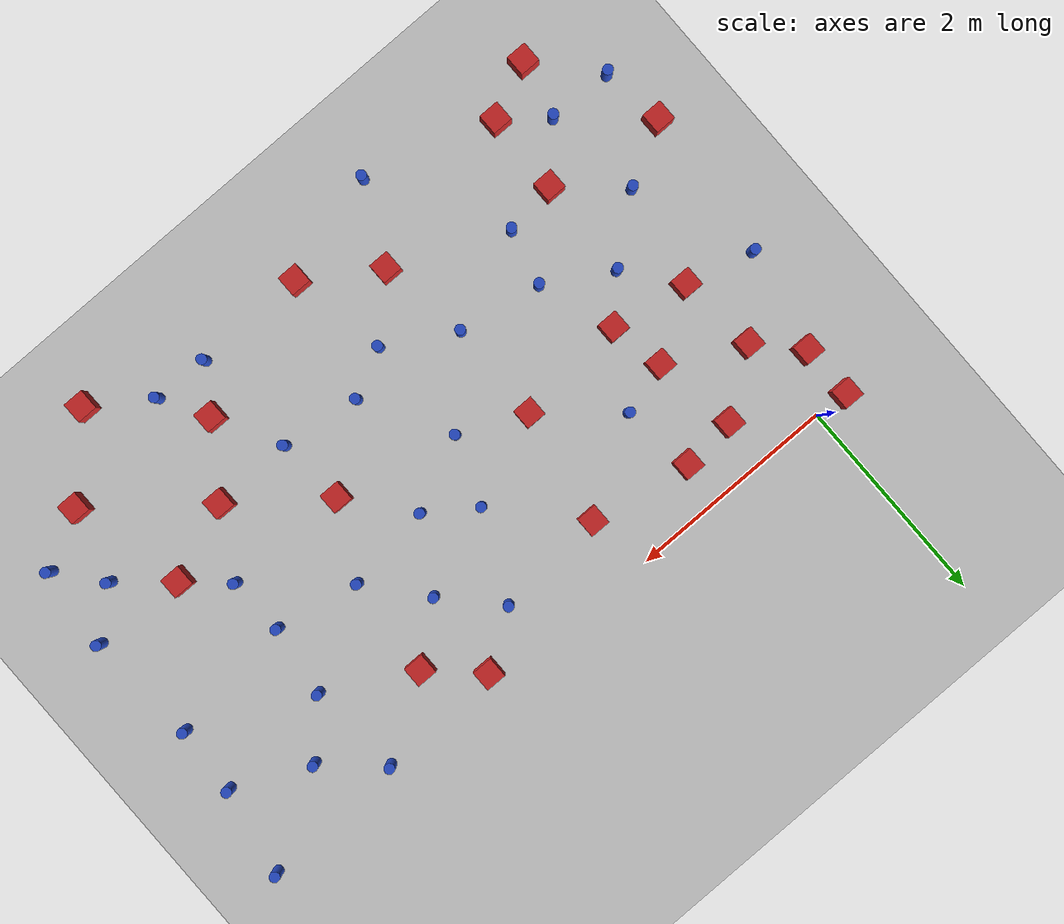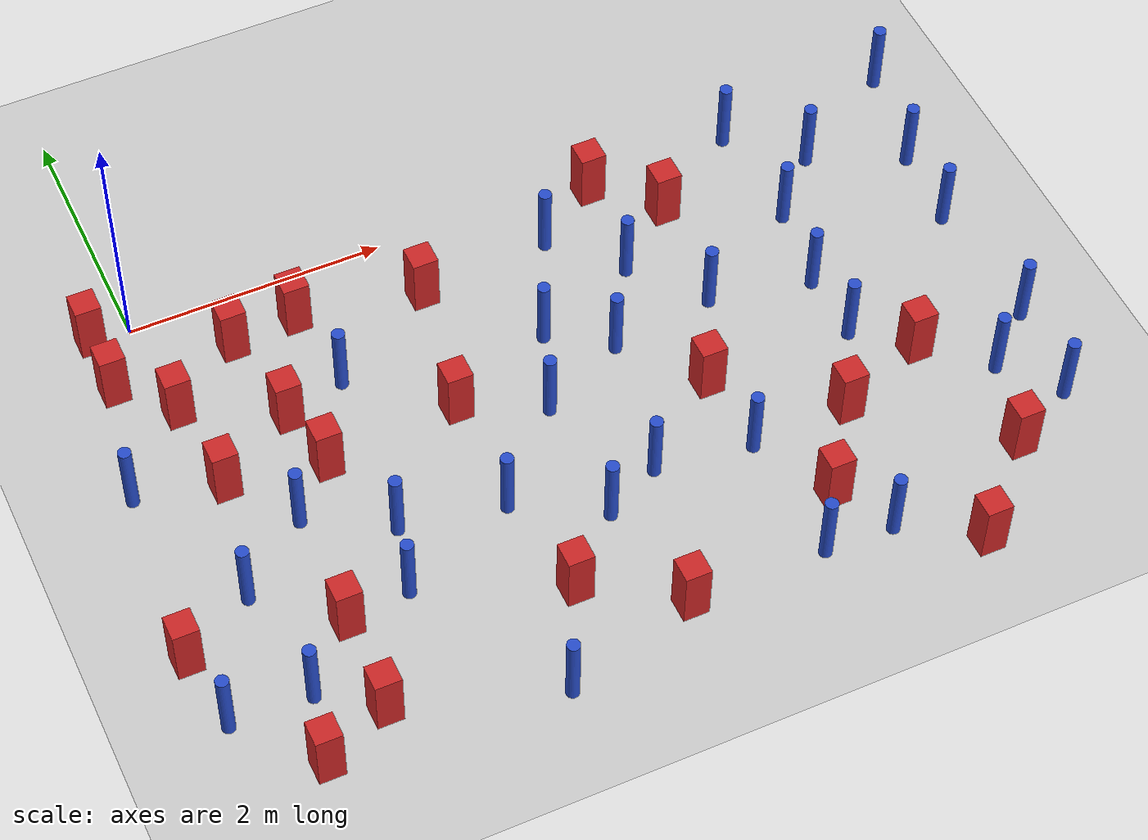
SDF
<sdf version="1.6">
 <world name="default">
  <model name="ground_plane">
   <static>1</static>
   <link name="link">
    <collision name="collision">
     <geometry><plane><normal>0 0 1</normal><size>100 100</size></plane></geometry>
     <surface><friction><ode><mu>100</mu><mu2>50</mu2></ode></friction></surface>
    </collision>
    <visual name="visual">
     <cast_shadows>0</cast_shadows>
     <geometry><plane><normal>0 0 1</normal><size>100 100</size></plane></geometry>
     <material>
      <ambient>1.0 1.0 1.0 1.0</ambient>
      <diffuse>0.8 0.8 0.8 1.0</diffuse>
      <specular>0.01 0.01 0.01 1.000000</specular>
     </material>
    </visual>
   </link>
  </model>
  <model name="NamedLocations">
   <static>true</static>
   <link name="DefaultStart"><pose>8.5 0 0 0 0 3.14</pose></link>
  </model>
  <model name="pole_obstacle7">
   <static>true</static>
   <pose>1.68926775952 -4.21490488597 2.88873142074e-08 -9.90536689852e-09 4.60219948989e-07 -1.2096599496e-07</pose>
   <link name="link">
    <pose>0 0 0.3 0 -0 0</pose>
    <inertial>
     <mass>1</mass>
     <inertia><ixx>0.145833</ixx><ixy>0</ixy><ixz>0</ixz><iyy>0.145833</iyy><iyz>0</iyz><izz>0.125</izz></inertia>
    </inertial>
    <collision name="collision">
     <geometry><cylinder><radius>0.05</radius><length>.6</length></cylinder></geometry>
    </collision>
    <visual name="visual">
     <geometry><cylinder><radius>0.05</radius><length>.6</length></cylinder></geometry>
     <material>
      <script><name>Gazebo/Blue</name><uri>file://media/materials/scripts/gazebo.material</uri></script>
     </material>
    </visual>
   </link>
  </model>
  <model name="square_post_obstacle15">
   <static>true</static>
   <pose>0.062376917893 -0.889046045588 8.22691968438e-08 7.2212513382e-06 -7.54495500217e-07 2.29674213826e-05</pose>
   <link name="link">
    <pose>0 0 0.25 0 -0 0</pose>
    <inertial>
     <mass>100</mass>
     <inertia>
      <ixx>0.166667</ixx>
      <ixy>0</ixy>
      <ixz>0</ixz>
      <iyy>0.166667</iyy>
      <iyz>0</iyz>
      <izz>0.166667</izz>
     </inertia>
    </inertial>
    <collision name="collision"><geometry><box><size>.2 .2 .5</size></box></geometry></collision>
    <visual name="visual">
     <geometry><box><size>.2 .2 .5</size></box></geometry>
     <material>
      <script><name>Gazebo/Red</name><uri>file://media/materials/scripts/gazebo.material</uri></script>
     </material>
    </visual>
   </link>
  </model>
  <model name="pole_obstacle12">
   <static>true</static>
   <pose>3.62660769973 -0.998927307068 2.88873142074e-08 -9.90536689217e-09 4.60219949004e-07 -1.20965994953e-07</pose>
   <link name="link">
    <pose>0 0 0.3 0 -0 0</pose>
    <inertial>
     <mass>1</mass>
     <inertia><ixx>0.145833</ixx><ixy>0</ixy><ixz>0</ixz><iyy>0.145833</iyy><iyz>0</iyz><izz>0.125</izz></inertia>
    </inertial>
    <collision name="collision">
     <geometry><cylinder><radius>0.05</radius><length>.6</length></cylinder></geometry>
    </collision>
    <visual name="visual">
     <geometry><cylinder><radius>0.05</radius><length>.6</length></cylinder></geometry>
     <material>
      <script><name>Gazebo/Blue</name><uri>file://media/materials/scripts/gazebo.material</uri></script>
     </material>
    </visual>
   </link>
  </model>
  <model name="pole_obstacle22">
   <static>true</static>
   <pose>4.3328598332 -3.92472839638 2.88873142074e-08 -9.90536690245e-09 4.6021994898e-07 -1.20965994966e-07</pose>
   <link name="link">
    <pose>0 0 0.3 0 -0 0</pose>
    <inertial>
     <mass>1</mass>
     <inertia><ixx>0.145833</ixx><ixy>0</ixy><ixz>0</ixz><iyy>0.145833</iyy><iyz>0</iyz><izz>0.125</izz></inertia>
    </inertial>
    <collision name="collision">
     <geometry><cylinder><radius>0.05</radius><length>.6</length></cylinder></geometry>
    </collision>
    <visual name="visual">
     <geometry><cylinder><radius>0.05</radius><length>.6</length></cylinder></geometry>
     <material>
      <script><name>Gazebo/Blue</name><uri>file://media/materials/scripts/gazebo.material</uri></script>
     </material>
    </visual>
   </link>
  </model>
  <model name="square_post_obstacle33">
   <static>true</static>
   <pose>4.07903659995 -3.48674998995 8.22691968438e-08 7.2212513382e-06 -7.54495500217e-07 2.29674213826e-05</pose>
   <link name="link">
    <pose>0 0 0.25 0 -0 0</pose>
    <inertial>
     <mass>100</mass>
     <inertia>
      <ixx>0.166667</ixx>
      <ixy>0</ixy>
      <ixz>0</ixz>
      <iyy>0.166667</iyy>
      <iyz>0</iyz>
      <izz>0.166667</izz>
     </inertia>
    </inertial>
    <collision name="collision"><geometry><box><size>.2 .2 .5</size></box></geometry></collision>
    <visual name="visual">
     <geometry><box><size>.2 .2 .5</size></box></geometry>
     <material>
      <script><name>Gazebo/Red</name><uri>file://media/materials/scripts/gazebo.material</uri></script>
     </material>
    </visual>
   </link>
  </model>
  <model name="pole_obstacle30">
   <static>true</static>
   <pose>4.87425039566 -2.23566295993 2.88873142074e-08 -9.90536690245e-09 4.6021994898e-07 -1.20965994966e-07</pose>
   <link name="link">
    <pose>0 0 0.3 0 -0 0</pose>
    <inertial>
     <mass>1</mass>
     <inertia><ixx>0.145833</ixx><ixy>0</ixy><ixz>0</ixz><iyy>0.145833</iyy><iyz>0</iyz><izz>0.125</izz></inertia>
    </inertial>
    <collision name="collision">
     <geometry><cylinder><radius>0.05</radius><length>.6</length></cylinder></geometry>
    </collision>
    <visual name="visual">
     <geometry><cylinder><radius>0.05</radius><length>.6</length></cylinder></geometry>
     <material>
      <script><name>Gazebo/Blue</name><uri>file://media/materials/scripts/gazebo.material</uri></script>
     </material>
    </visual>
   </link>
  </model>
  <model name="pole_obstacle34">
   <static>true</static>
   <pose>6.26835892626 -0.0522390040854 2.88873142074e-08 -9.90536689836e-09 4.60219948989e-07 -1.20965994962e-07</pose>
   <link name="link">
    <pose>0 0 0.3 0 -0 0</pose>
    <inertial>
     <mass>1</mass>
     <inertia><ixx>0.145833</ixx><ixy>0</ixy><ixz>0</ixz><iyy>0.145833</iyy><iyz>0</iyz><izz>0.125</izz></inertia>
    </inertial>
    <collision name="collision">
     <geometry><cylinder><radius>0.05</radius><length>.6</length></cylinder></geometry>
    </collision>
    <visual name="visual">
     <geometry><cylinder><radius>0.05</radius><length>.6</length></cylinder></geometry>
     <material>
      <script><name>Gazebo/Blue</name><uri>file://media/materials/scripts/gazebo.material</uri></script>
     </material>
    </visual>
   </link>
  </model>
  <model name="pole_obstacle38">
   <static>true</static>
   <pose>4.88893761564 -0.116368006837 2.88873142074e-08 -9.90536689681e-09 4.60219948993e-07 -1.20965994959e-07</pose>
   <link name="link">
    <pose>0 0 0.3 0 -0 0</pose>
    <inertial>
     <mass>1</mass>
     <inertia><ixx>0.145833</ixx><ixy>0</ixy><ixz>0</ixz><iyy>0.145833</iyy><iyz>0</iyz><izz>0.125</izz></inertia>
    </inertial>
    <collision name="collision">
     <geometry><cylinder><radius>0.05</radius><length>.6</length></cylinder></geometry>
    </collision>
    <visual name="visual">
     <geometry><cylinder><radius>0.05</radius><length>.6</length></cylinder></geometry>
     <material>
      <script><name>Gazebo/Blue</name><uri>file://media/materials/scripts/gazebo.material</uri></script>
     </material>
    </visual>
   </link>
  </model>
  <model name="pole_obstacle43">
   <static>true</static>
   <pose>4.95442581487 -1.01686541132 2.88873142074e-08 -9.90536689582e-09 4.60219948995e-07 -1.20965994957e-07</pose>
   <link name="link">
    <pose>0 0 0.3 0 -0 0</pose>
    <inertial>
     <mass>1</mass>
     <inertia><ixx>0.145833</ixx><ixy>0</ixy><ixz>0</ixz><iyy>0.145833</iyy><iyz>0</iyz><izz>0.125</izz></inertia>
    </inertial>
    <collision name="collision">
     <geometry><cylinder><radius>0.05</radius><length>.6</length></cylinder></geometry>
    </collision>
    <visual name="visual">
     <geometry><cylinder><radius>0.05</radius><length>.6</length></cylinder></geometry>
     <material>
      <script><name>Gazebo/Blue</name><uri>file://media/materials/scripts/gazebo.material</uri></script>
     </material>
    </visual>
   </link>
  </model>
  <model name="square_post_obstacle48">
   <static>true</static>
   <pose>3.6944671176 -0.170231550724 8.22691968438e-08 7.2212513382e-06 -7.54495500217e-07 2.29674213826e-05</pose>
   <link name="link">
    <pose>0 0 0.25 0 -0 0</pose>
    <inertial>
     <mass>100</mass>
     <inertia>
      <ixx>0.166667</ixx>
      <ixy>0</ixy>
      <ixz>0</ixz>
      <iyy>0.166667</iyy>
      <iyz>0</iyz>
      <izz>0.166667</izz>
     </inertia>
    </inertial>
    <collision name="collision"><geometry><box><size>.2 .2 .5</size></box></geometry></collision>
    <visual name="visual">
     <geometry><box><size>.2 .2 .5</size></box></geometry>
     <material>
      <script><name>Gazebo/Red</name><uri>file://media/materials/scripts/gazebo.material</uri></script>
     </material>
    </visual>
   </link>
  </model>
  <model name="square_post_obstacle49">
   <static>true</static>
   <pose>2.05412164594 -3.4729217565 8.22691968438e-08 7.2212513382e-06 -7.54495500217e-07 2.29674213826e-05</pose>
   <link name="link">
    <pose>0 0 0.25 0 -0 0</pose>
    <inertial>
     <mass>100</mass>
     <inertia>
      <ixx>0.166667</ixx>
      <ixy>0</ixy>
      <ixz>0</ixz>
      <iyy>0.166667</iyy>
      <iyz>0</iyz>
      <izz>0.166667</izz>
     </inertia>
    </inertial>
    <collision name="collision"><geometry><box><size>.2 .2 .5</size></box></geometry></collision>
    <visual name="visual">
     <geometry><box><size>.2 .2 .5</size></box></geometry>
     <material>
      <script><name>Gazebo/Red</name><uri>file://media/materials/scripts/gazebo.material</uri></script>
     </material>
    </visual>
   </link>
  </model>
  <model name="square_post_obstacle52">
   <static>true</static>
   <pose>0.138987767738 -1.64536180396 8.22691968438e-08 7.2212513382e-06 -7.54495500217e-07 2.29674213826e-05</pose>
   <link name="link">
    <pose>0 0 0.25 0 -0 0</pose>
    <inertial>
     <mass>100</mass>
     <inertia>
      <ixx>0.166667</ixx>
      <ixy>0</ixy>
      <ixz>0</ixz>
      <iyy>0.166667</iyy>
      <iyz>0</iyz>
      <izz>0.166667</izz>
     </inertia>
    </inertial>
    <collision name="collision"><geometry><box><size>.2 .2 .5</size></box></geometry></collision>
    <visual name="visual">
     <geometry><box><size>.2 .2 .5</size></box></geometry>
     <material>
      <script><name>Gazebo/Red</name><uri>file://media/materials/scripts/gazebo.material</uri></script>
     </material>
    </visual>
   </link>
  </model>
  <model name="pole_obstacle57">
   <static>true</static>
   <pose>3.23559337814 -1.63829231832 2.88873142074e-08 -9.90536689395e-09 4.60219949e-07 -1.20965994953e-07</pose>
   <link name="link">
    <pose>0 0 0.3 0 -0 0</pose>
    <inertial>
     <mass>1</mass>
     <inertia><ixx>0.145833</ixx><ixy>0</ixy><ixz>0</ixz><iyy>0.145833</iyy><iyz>0</iyz><izz>0.125</izz></inertia>
    </inertial>
    <collision name="collision">
     <geometry><cylinder><radius>0.05</radius><length>.6</length></cylinder></geometry>
    </collision>
    <visual name="visual">
     <geometry><cylinder><radius>0.05</radius><length>.6</length></cylinder></geometry>
     <material>
      <script><name>Gazebo/Blue</name><uri>file://media/materials/scripts/gazebo.material</uri></script>
     </material>
    </visual>
   </link>
  </model>
  <model name="pole_obstacle60">
   <static>true</static>
   <pose>6.05364668089 -3.38043724382 2.88873142074e-08 -9.90536690245e-09 4.6021994898e-07 -1.20965994966e-07</pose>
   <link name="link">
    <pose>0 0 0.3 0 -0 0</pose>
    <inertial>
     <mass>1</mass>
     <inertia><ixx>0.145833</ixx><ixy>0</ixy><ixz>0</ixz><iyy>0.145833</iyy><iyz>0</iyz><izz>0.125</izz></inertia>
    </inertial>
    <collision name="collision">
     <geometry><cylinder><radius>0.05</radius><length>.6</length></cylinder></geometry>
    </collision>
    <visual name="visual">
     <geometry><cylinder><radius>0.05</radius><length>.6</length></cylinder></geometry>
     <material>
      <script><name>Gazebo/Blue</name><uri>file://media/materials/scripts/gazebo.material</uri></script>
     </material>
    </visual>
   </link>
  </model>
  <model name="square_post_obstacle67">
   <static>true</static>
   <pose>-0.054068651377 -4.07074214937 8.22691968438e-08 7.2212513382e-06 -7.54495500217e-07 2.29674213826e-05</pose>
   <link name="link">
    <pose>0 0 0.25 0 -0 0</pose>
    <inertial>
     <mass>100</mass>
     <inertia>
      <ixx>0.166667</ixx>
      <ixy>0</ixy>
      <ixz>0</ixz>
      <iyy>0.166667</iyy>
      <iyz>0</iyz>
      <izz>0.166667</izz>
     </inertia>
    </inertial>
    <collision name="collision"><geometry><box><size>.2 .2 .5</size></box></geometry></collision>
    <visual name="visual">
     <geometry><box><size>.2 .2 .5</size></box></geometry>
     <material>
      <script><name>Gazebo/Red</name><uri>file://media/materials/scripts/gazebo.material</uri></script>
     </material>
    </visual>
   </link>
  </model>
  <model name="pole_obstacle65">
   <static>true</static>
   <pose>2.79045540812 -1.32845623246 2.88873142074e-08 -9.90536689395e-09 4.60219949e-07 -1.20965994953e-07</pose>
   <link name="link">
    <pose>0 0 0.3 0 -0 0</pose>
    <inertial>
     <mass>1</mass>
     <inertia><ixx>0.145833</ixx><ixy>0</ixy><ixz>0</ixz><iyy>0.145833</iyy><iyz>0</iyz><izz>0.125</izz></inertia>
    </inertial>
    <collision name="collision">
     <geometry><cylinder><radius>0.05</radius><length>.6</length></cylinder></geometry>
    </collision>
    <visual name="visual">
     <geometry><cylinder><radius>0.05</radius><length>.6</length></cylinder></geometry>
     <material>
      <script><name>Gazebo/Blue</name><uri>file://media/materials/scripts/gazebo.material</uri></script>
     </material>
    </visual>
   </link>
  </model>
  <model name="square_post_obstacle69">
   <static>true</static>
   <pose>1.16079908641 -0.425439595996 8.22691968438e-08 7.2212513382e-06 -7.54495500217e-07 2.29674213826e-05</pose>
   <link name="link">
    <pose>0 0 0.25 0 -0 0</pose>
    <inertial>
     <mass>100</mass>
     <inertia>
      <ixx>0.166667</ixx>
      <ixy>0</ixy>
      <ixz>0</ixz>
      <iyy>0.166667</iyy>
      <iyz>0</iyz>
      <izz>0.166667</izz>
     </inertia>
    </inertial>
    <collision name="collision"><geometry><box><size>.2 .2 .5</size></box></geometry></collision>
    <visual name="visual">
     <geometry><box><size>.2 .2 .5</size></box></geometry>
     <material>
      <script><name>Gazebo/Red</name><uri>file://media/materials/scripts/gazebo.material</uri></script>
     </material>
    </visual>
   </link>
  </model>
  <model name="pole_obstacle80">
   <static>true</static>
   <pose>4.06249641019 -1.52889544773 2.88873142074e-08 -9.90536689445e-09 4.60219948999e-07 -1.20965994956e-07</pose>
   <link name="link">
    <pose>0 0 0.3 0 -0 0</pose>
    <inertial>
     <mass>1</mass>
     <inertia><ixx>0.145833</ixx><ixy>0</ixy><ixz>0</ixz><iyy>0.145833</iyy><iyz>0</iyz><izz>0.125</izz></inertia>
    </inertial>
    <collision name="collision">
     <geometry><cylinder><radius>0.05</radius><length>.6</length></cylinder></geometry>
    </collision>
    <visual name="visual">
     <geometry><cylinder><radius>0.05</radius><length>.6</length></cylinder></geometry>
     <material>
      <script><name>Gazebo/Blue</name><uri>file://media/materials/scripts/gazebo.material</uri></script>
     </material>
    </visual>
   </link>
  </model>
  <model name="pole_obstacle87">
   <static>true</static>
   <pose>1.12539860344 -2.4840503054 2.88873142074e-08 -9.90536689791e-09 4.6021994899e-07 -1.20965994959e-07</pose>
   <link name="link">
    <pose>0 0 0.3 0 -0 0</pose>
    <inertial>
     <mass>1</mass>
     <inertia><ixx>0.145833</ixx><ixy>0</ixy><ixz>0</ixz><iyy>0.145833</iyy><iyz>0</iyz><izz>0.125</izz></inertia>
    </inertial>
    <collision name="collision">
     <geometry><cylinder><radius>0.05</radius><length>.6</length></cylinder></geometry>
    </collision>
    <visual name="visual">
     <geometry><cylinder><radius>0.05</radius><length>.6</length></cylinder></geometry>
     <material>
      <script><name>Gazebo/Blue</name><uri>file://media/materials/scripts/gazebo.material</uri></script>
     </material>
    </visual>
   </link>
  </model>
  <model name="square_post_obstacle81">
   <static>true</static>
   <pose>0.49326898185 -3.08154192869 8.22691968438e-08 7.22125133819e-06 -7.54495500217e-07 2.29674213826e-05</pose>
   <link name="link">
    <pose>0 0 0.25 0 -0 0</pose>
    <inertial>
     <mass>100</mass>
     <inertia>
      <ixx>0.166667</ixx>
      <ixy>0</ixy>
      <ixz>0</ixz>
      <iyy>0.166667</iyy>
      <iyz>0</iyz>
      <izz>0.166667</izz>
     </inertia>
    </inertial>
    <collision name="collision"><geometry><box><size>.2 .2 .5</size></box></geometry></collision>
    <visual name="visual">
     <geometry><box><size>.2 .2 .5</size></box></geometry>
     <material>
      <script><name>Gazebo/Red</name><uri>file://media/materials/scripts/gazebo.material</uri></script>
     </material>
    </visual>
   </link>
  </model>
  <model name="pole_obstacle91">
   <static>true</static>
   <pose>-0.0542795309125 -2.5970761582 2.88873142074e-08 -9.90536692535e-09 4.60219948925e-07 -1.2096599499e-07</pose>
   <link name="link">
    <pose>0 0 0.3 0 -0 0</pose>
    <inertial>
     <mass>1</mass>
     <inertia><ixx>0.145833</ixx><ixy>0</ixy><ixz>0</ixz><iyy>0.145833</iyy><iyz>0</iyz><izz>0.125</izz></inertia>
    </inertial>
    <collision name="collision">
     <geometry><cylinder><radius>0.05</radius><length>.6</length></cylinder></geometry>
    </collision>
    <visual name="visual">
     <geometry><cylinder><radius>0.05</radius><length>.6</length></cylinder></geometry>
     <material>
      <script><name>Gazebo/Blue</name><uri>file://media/materials/scripts/gazebo.material</uri></script>
     </material>
    </visual>
   </link>
  </model>
  <model name="pole_obstacle92">
   <static>true</static>
   <pose>0.516582253107 -2.13598227601 2.88873142074e-08 -9.90536689505e-09 4.60219948997e-07 -1.20965994956e-07</pose>
   <link name="link">
    <pose>0 0 0.3 0 -0 0</pose>
    <inertial>
     <mass>1</mass>
     <inertia><ixx>0.145833</ixx><ixy>0</ixy><ixz>0</ixz><iyy>0.145833</iyy><iyz>0</iyz><izz>0.125</izz></inertia>
    </inertial>
    <collision name="collision">
     <geometry><cylinder><radius>0.05</radius><length>.6</length></cylinder></geometry>
    </collision>
    <visual name="visual">
     <geometry><cylinder><radius>0.05</radius><length>.6</length></cylinder></geometry>
     <material>
      <script><name>Gazebo/Blue</name><uri>file://media/materials/scripts/gazebo.material</uri></script>
     </material>
    </visual>
   </link>
  </model>
  <model name="square_post_obstacle91">
   <static>true</static>
   <pose>2.12194016247 -0.595389300354 8.22691968438e-08 7.2212513382e-06 -7.54495500217e-07 2.29674213826e-05</pose>
   <link name="link">
    <pose>0 0 0.25 0 -0 0</pose>
    <inertial>
     <mass>100</mass>
     <inertia>
      <ixx>0.166667</ixx>
      <ixy>0</ixy>
      <ixz>0</ixz>
      <iyy>0.166667</iyy>
      <iyz>0</iyz>
      <izz>0.166667</izz>
     </inertia>
    </inertial>
    <collision name="collision"><geometry><box><size>.2 .2 .5</size></box></geometry></collision>
    <visual name="visual">
     <geometry><box><size>.2 .2 .5</size></box></geometry>
     <material>
      <script><name>Gazebo/Red</name><uri>file://media/materials/scripts/gazebo.material</uri></script>
     </material>
    </visual>
   </link>
  </model>
  <model name="pole_obstacle115">
   <static>true</static>
   <pose>2.55005568872 -1.96223802702 2.88873142074e-08 -9.90536689589e-09 4.60219948995e-07 -1.20965994957e-07</pose>
   <link name="link">
    <pose>0 0 0.3 0 -0 0</pose>
    <inertial>
     <mass>1</mass>
     <inertia><ixx>0.145833</ixx><ixy>0</ixy><ixz>0</ixz><iyy>0.145833</iyy><iyz>0</iyz><izz>0.125</izz></inertia>
    </inertial>
    <collision name="collision">
     <geometry><cylinder><radius>0.05</radius><length>.6</length></cylinder></geometry>
    </collision>
    <visual name="visual">
     <geometry><cylinder><radius>0.05</radius><length>.6</length></cylinder></geometry>
     <material>
      <script><name>Gazebo/Blue</name><uri>file://media/materials/scripts/gazebo.material</uri></script>
     </material>
    </visual>
   </link>
  </model>
  <model name="square_post_obstacle103">
   <static>true</static>
   <pose>-0.301342070053 0.00789659479354 8.22691968438e-08 7.2212513382e-06 -7.54495500217e-07 2.29674213826e-05</pose>
   <link name="link">
    <pose>0 0 0.25 0 -0 0</pose>
    <inertial>
     <mass>100</mass>
     <inertia>
      <ixx>0.166667</ixx>
      <ixy>0</ixy>
      <ixz>0</ixz>
      <iyy>0.166667</iyy>
      <iyz>0</iyz>
      <izz>0.166667</izz>
     </inertia>
    </inertial>
    <collision name="collision"><geometry><box><size>.2 .2 .5</size></box></geometry></collision>
    <visual name="visual">
     <geometry><box><size>.2 .2 .5</size></box></geometry>
     <material>
      <script><name>Gazebo/Red</name><uri>file://media/materials/scripts/gazebo.material</uri></script>
     </material>
    </visual>
   </link>
  </model>
  <model name="square_post_obstacle107">
   <static>true</static>
   <pose>5.50908659402 -3.65465700908 8.22691968438e-08 7.2212513382e-06 -7.54495500217e-07 2.29674213826e-05</pose>
   <link name="link">
    <pose>0 0 0.25 0 -0 0</pose>
    <inertial>
     <mass>100</mass>
     <inertia>
      <ixx>0.166667</ixx>
      <ixy>0</ixy>
      <ixz>0</ixz>
      <iyy>0.166667</iyy>
      <iyz>0</iyz>
      <izz>0.166667</izz>
     </inertia>
    </inertial>
    <collision name="collision"><geometry><box><size>.2 .2 .5</size></box></geometry></collision>
    <visual name="visual">
     <geometry><box><size>.2 .2 .5</size></box></geometry>
     <material>
      <script><name>Gazebo/Red</name><uri>file://media/materials/scripts/gazebo.material</uri></script>
     </material>
    </visual>
   </link>
  </model>
  <model name="square_post_obstacle110">
   <static>true</static>
   <pose>1.92828632103 -1.68292529662 8.22691968438e-08 7.2212513382e-06 -7.54495500217e-07 2.29674213826e-05</pose>
   <link name="link">
    <pose>0 0 0.25 0 -0 0</pose>
    <inertial>
     <mass>100</mass>
     <inertia>
      <ixx>0.166667</ixx>
      <ixy>0</ixy>
      <ixz>0</ixz>
      <iyy>0.166667</iyy>
      <iyz>0</iyz>
      <izz>0.166667</izz>
     </inertia>
    </inertial>
    <collision name="collision"><geometry><box><size>.2 .2 .5</size></box></geometry></collision>
    <visual name="visual">
     <geometry><box><size>.2 .2 .5</size></box></geometry>
     <material>
      <script><name>Gazebo/Red</name><uri>file://media/materials/scripts/gazebo.material</uri></script>
     </material>
    </visual>
   </link>
  </model>
  <model name="pole_obstacle125">
   <static>true</static>
   <pose>1.25809109804 -1.10820998639 2.88873142074e-08 -9.90536689672e-09 4.60219948993e-07 -1.20965994959e-07</pose>
   <link name="link">
    <pose>0 0 0.3 0 -0 0</pose>
    <inertial>
     <mass>1</mass>
     <inertia><ixx>0.145833</ixx><ixy>0</ixy><ixz>0</ixz><iyy>0.145833</iyy><iyz>0</iyz><izz>0.125</izz></inertia>
    </inertial>
    <collision name="collision">
     <geometry><cylinder><radius>0.05</radius><length>.6</length></cylinder></geometry>
    </collision>
    <visual name="visual">
     <geometry><cylinder><radius>0.05</radius><length>.6</length></cylinder></geometry>
     <material>
      <script><name>Gazebo/Blue</name><uri>file://media/materials/scripts/gazebo.material</uri></script>
     </material>
    </visual>
   </link>
  </model>
  <model name="square_post_obstacle113">
   <static>true</static>
   <pose>0.771388628003 -1.25482587899 8.22691968438e-08 7.2212513382e-06 -7.54495500217e-07 2.29674213826e-05</pose>
   <link name="link">
    <pose>0 0 0.25 0 -0 0</pose>
    <inertial>
     <mass>100</mass>
     <inertia>
      <ixx>0.166667</ixx>
      <ixy>0</ixy>
      <ixz>0</ixz>
      <iyy>0.166667</iyy>
      <iyz>0</iyz>
      <izz>0.166667</izz>
     </inertia>
    </inertial>
    <collision name="collision"><geometry><box><size>.2 .2 .5</size></box></geometry></collision>
    <visual name="visual">
     <geometry><box><size>.2 .2 .5</size></box></geometry>
     <material>
      <script><name>Gazebo/Red</name><uri>file://media/materials/scripts/gazebo.material</uri></script>
     </material>
    </visual>
   </link>
  </model>
  <model name="pole_obstacle131">
   <static>true</static>
   <pose>6.13574726492 -2.60647138383 2.88873142074e-08 -9.90536690245e-09 4.6021994898e-07 -1.20965994966e-07</pose>
   <link name="link">
    <pose>0 0 0.3 0 -0 0</pose>
    <inertial>
     <mass>1</mass>
     <inertia><ixx>0.145833</ixx><ixy>0</ixy><ixz>0</ixz><iyy>0.145833</iyy><iyz>0</iyz><izz>0.125</izz></inertia>
    </inertial>
    <collision name="collision">
     <geometry><cylinder><radius>0.05</radius><length>.6</length></cylinder></geometry>
    </collision>
    <visual name="visual">
     <geometry><cylinder><radius>0.05</radius><length>.6</length></cylinder></geometry>
     <material>
      <script><name>Gazebo/Blue</name><uri>file://media/materials/scripts/gazebo.material</uri></script>
     </material>
    </visual>
   </link>
  </model>
  <model name="pole_obstacle136">
   <static>true</static>
   <pose>-0.505141098287 -1.47620990858 2.88873142074e-08 -9.90536689621e-09 4.60219948994e-07 -1.20965994957e-07</pose>
   <link name="link">
    <pose>0 0 0.3 0 -0 0</pose>
    <inertial>
     <mass>1</mass>
     <inertia><ixx>0.145833</ixx><ixy>0</ixy><ixz>0</ixz><iyy>0.145833</iyy><iyz>0</iyz><izz>0.125</izz></inertia>
    </inertial>
    <collision name="collision">
     <geometry><cylinder><radius>0.05</radius><length>.6</length></cylinder></geometry>
    </collision>
    <visual name="visual">
     <geometry><cylinder><radius>0.05</radius><length>.6</length></cylinder></geometry>
     <material>
      <script><name>Gazebo/Blue</name><uri>file://media/materials/scripts/gazebo.material</uri></script>
     </material>
    </visual>
   </link>
  </model>
  <model name="square_post_obstacle127">
   <static>true</static>
   <pose>0.46548893261 -3.83671670986 8.22691968438e-08 7.22125133819e-06 -7.54495500217e-07 2.29674213826e-05</pose>
   <link name="link">
    <pose>0 0 0.25 0 -0 0</pose>
    <inertial>
     <mass>100</mass>
     <inertia>
      <ixx>0.166667</ixx>
      <ixy>0</ixy>
      <ixz>0</ixz>
      <iyy>0.166667</iyy>
      <iyz>0</iyz>
      <izz>0.166667</izz>
     </inertia>
    </inertial>
    <collision name="collision"><geometry><box><size>.2 .2 .5</size></box></geometry></collision>
    <visual name="visual">
     <geometry><box><size>.2 .2 .5</size></box></geometry>
     <material>
      <script><name>Gazebo/Red</name><uri>file://media/materials/scripts/gazebo.material</uri></script>
     </material>
    </visual>
   </link>
  </model>
  <model name="square_post_obstacle135">
   <static>true</static>
   <pose>0.646546149364 -0.470778689874 8.22691968438e-08 7.2212513382e-06 -7.54495500217e-07 2.29674213826e-05</pose>
   <link name="link">
    <pose>0 0 0.25 0 -0 0</pose>
    <inertial>
     <mass>100</mass>
     <inertia>
      <ixx>0.166667</ixx>
      <ixy>0</ixy>
      <ixz>0</ixz>
      <iyy>0.166667</iyy>
      <iyz>0</iyz>
      <izz>0.166667</izz>
     </inertia>
    </inertial>
    <collision name="collision"><geometry><box><size>.2 .2 .5</size></box></geometry></collision>
    <visual name="visual">
     <geometry><box><size>.2 .2 .5</size></box></geometry>
     <material>
      <script><name>Gazebo/Red</name><uri>file://media/materials/scripts/gazebo.material</uri></script>
     </material>
    </visual>
   </link>
  </model>
  <model name="pole_obstacle146">
   <static>true</static>
   <pose>6.06417145861 -1.5332310533 2.88873142074e-08 -9.90536689445e-09 4.60219948999e-07 -1.20965994956e-07</pose>
   <link name="link">
    <pose>0 0 0.3 0 -0 0</pose>
    <inertial>
     <mass>1</mass>
     <inertia><ixx>0.145833</ixx><ixy>0</ixy><ixz>0</ixz><iyy>0.145833</iyy><iyz>0</iyz><izz>0.125</izz></inertia>
    </inertial>
    <collision name="collision">
     <geometry><cylinder><radius>0.05</radius><length>.6</length></cylinder></geometry>
    </collision>
    <visual name="visual">
     <geometry><cylinder><radius>0.05</radius><length>.6</length></cylinder></geometry>
     <material>
      <script><name>Gazebo/Blue</name><uri>file://media/materials/scripts/gazebo.material</uri></script>
     </material>
    </visual>
   </link>
  </model>
  <model name="square_post_obstacle139">
   <static>true</static>
   <pose>4.13177111058 -0.590154424896 8.22691968438e-08 7.2212513382e-06 -7.54495500217e-07 2.29674213826e-05</pose>
   <link name="link">
    <pose>0 0 0.25 0 -0 0</pose>
    <inertial>
     <mass>100</mass>
     <inertia>
      <ixx>0.166667</ixx>
      <ixy>0</ixy>
      <ixz>0</ixz>
      <iyy>0.166667</iyy>
      <iyz>0</iyz>
      <izz>0.166667</izz>
     </inertia>
    </inertial>
    <collision name="collision"><geometry><box><size>.2 .2 .5</size></box></geometry></collision>
    <visual name="visual">
     <geometry><box><size>.2 .2 .5</size></box></geometry>
     <material>
      <script><name>Gazebo/Red</name><uri>file://media/materials/scripts/gazebo.material</uri></script>
     </material>
    </visual>
   </link>
  </model>
  <model name="pole_obstacle151">
   <static>true</static>
   <pose>6.10692791167 -0.888896882332 2.88873142074e-08 -9.90536689837e-09 4.60219948989e-07 -1.2096599496e-07</pose>
   <link name="link">
    <pose>0 0 0.3 0 -0 0</pose>
    <inertial>
     <mass>1</mass>
     <inertia><ixx>0.145833</ixx><ixy>0</ixy><ixz>0</ixz><iyy>0.145833</iyy><iyz>0</iyz><izz>0.125</izz></inertia>
    </inertial>
    <collision name="collision">
     <geometry><cylinder><radius>0.05</radius><length>.6</length></cylinder></geometry>
    </collision>
    <visual name="visual">
     <geometry><cylinder><radius>0.05</radius><length>.6</length></cylinder></geometry>
     <material>
      <script><name>Gazebo/Blue</name><uri>file://media/materials/scripts/gazebo.material</uri></script>
     </material>
    </visual>
   </link>
  </model>
  <model name="pole_obstacle154">
   <static>true</static>
   <pose>-0.548022936857 -3.50871912548 2.88873142074e-08 -9.90536689656e-09 4.60219948993e-07 -1.20965994958e-07</pose>
   <link name="link">
    <pose>0 0 0.3 0 -0 0</pose>
    <inertial>
     <mass>1</mass>
     <inertia><ixx>0.145833</ixx><ixy>0</ixy><ixz>0</ixz><iyy>0.145833</iyy><iyz>0</iyz><izz>0.125</izz></inertia>
    </inertial>
    <collision name="collision">
     <geometry><cylinder><radius>0.05</radius><length>.6</length></cylinder></geometry>
    </collision>
    <visual name="visual">
     <geometry><cylinder><radius>0.05</radius><length>.6</length></cylinder></geometry>
     <material>
      <script><name>Gazebo/Blue</name><uri>file://media/materials/scripts/gazebo.material</uri></script>
     </material>
    </visual>
   </link>
  </model>
  <model name="square_post_obstacle148">
   <static>true</static>
   <pose>4.88055140511 -4.29373193996 8.22691968438e-08 7.22125133819e-06 -7.54495500217e-07 2.29674213826e-05</pose>
   <link name="link">
    <pose>0 0 0.25 0 -0 0</pose>
    <inertial>
     <mass>100</mass>
     <inertia>
      <ixx>0.166667</ixx>
      <ixy>0</ixy>
      <ixz>0</ixz>
      <iyy>0.166667</iyy>
      <iyz>0</iyz>
      <izz>0.166667</izz>
     </inertia>
    </inertial>
    <collision name="collision"><geometry><box><size>.2 .2 .5</size></box></geometry></collision>
    <visual name="visual">
     <geometry><box><size>.2 .2 .5</size></box></geometry>
     <material>
      <script><name>Gazebo/Red</name><uri>file://media/materials/scripts/gazebo.material</uri></script>
     </material>
    </visual>
   </link>
  </model>
  <model name="pole_obstacle158">
   <static>true</static>
   <pose>0.992233645274 -3.01018417121 2.88873142074e-08 -9.90536689802e-09 4.6021994899e-07 -1.2096599496e-07</pose>
   <link name="link">
    <pose>0 0 0.3 0 -0 0</pose>
    <inertial>
     <mass>1</mass>
     <inertia><ixx>0.145833</ixx><ixy>0</ixy><ixz>0</ixz><iyy>0.145833</iyy><iyz>0</iyz><izz>0.125</izz></inertia>
    </inertial>
    <collision name="collision">
     <geometry><cylinder><radius>0.05</radius><length>.6</length></cylinder></geometry>
    </collision>
    <visual name="visual">
     <geometry><cylinder><radius>0.05</radius><length>.6</length></cylinder></geometry>
     <material>
      <script><name>Gazebo/Blue</name><uri>file://media/materials/scripts/gazebo.material</uri></script>
     </material>
    </visual>
   </link>
  </model>
  <model name="pole_obstacle160">
   <static>true</static>
   <pose>5.71452412363 -2.96645414421 2.88873142074e-08 -9.90536690245e-09 4.6021994898e-07 -1.20965994966e-07</pose>
   <link name="link">
    <pose>0 0 0.3 0 -0 0</pose>
    <inertial>
     <mass>1</mass>
     <inertia><ixx>0.145833</ixx><ixy>0</ixy><ixz>0</ixz><iyy>0.145833</iyy><iyz>0</iyz><izz>0.125</izz></inertia>
    </inertial>
    <collision name="collision">
     <geometry><cylinder><radius>0.05</radius><length>.6</length></cylinder></geometry>
    </collision>
    <visual name="visual">
     <geometry><cylinder><radius>0.05</radius><length>.6</length></cylinder></geometry>
     <material>
      <script><name>Gazebo/Blue</name><uri>file://media/materials/scripts/gazebo.material</uri></script>
     </material>
    </visual>
   </link>
  </model>
  <model name="pole_obstacle161">
   <static>true</static>
   <pose>1.91459702405 -2.62687864916 2.88873142074e-08 -9.90536689791e-09 4.6021994899e-07 -1.20965994959e-07</pose>
   <link name="link">
    <pose>0 0 0.3 0 -0 0</pose>
    <inertial>
     <mass>1</mass>
     <inertia><ixx>0.145833</ixx><ixy>0</ixy><ixz>0</ixz><iyy>0.145833</iyy><iyz>0</iyz><izz>0.125</izz></inertia>
    </inertial>
    <collision name="collision">
     <geometry><cylinder><radius>0.05</radius><length>.6</length></cylinder></geometry>
    </collision>
    <visual name="visual">
     <geometry><cylinder><radius>0.05</radius><length>.6</length></cylinder></geometry>
     <material>
      <script><name>Gazebo/Blue</name><uri>file://media/materials/scripts/gazebo.material</uri></script>
     </material>
    </visual>
   </link>
  </model>
  <model name="pole_obstacle166">
   <static>true</static>
   <pose>0.0666979614008 -3.52612907758 2.88873142074e-08 -9.90536692479e-09 4.60219948927e-07 -1.20965994989e-07</pose>
   <link name="link">
    <pose>0 0 0.3 0 -0 0</pose>
    <inertial>
     <mass>1</mass>
     <inertia><ixx>0.145833</ixx><ixy>0</ixy><ixz>0</ixz><iyy>0.145833</iyy><iyz>0</iyz><izz>0.125</izz></inertia>
    </inertial>
    <collision name="collision">
     <geometry><cylinder><radius>0.05</radius><length>.6</length></cylinder></geometry>
    </collision>
    <visual name="visual">
     <geometry><cylinder><radius>0.05</radius><length>.6</length></cylinder></geometry>
     <material>
      <script><name>Gazebo/Blue</name><uri>file://media/materials/scripts/gazebo.material</uri></script>
     </material>
    </visual>
   </link>
  </model>
  <model name="square_post_obstacle161">
   <static>true</static>
   <pose>2.73182098746 -3.9145442921 8.22691968438e-08 7.22125133819e-06 -7.54495500217e-07 2.29674213826e-05</pose>
   <link name="link">
    <pose>0 0 0.25 0 -0 0</pose>
    <inertial>
     <mass>100</mass>
     <inertia>
      <ixx>0.166667</ixx>
      <ixy>0</ixy>
      <ixz>0</ixz>
      <iyy>0.166667</iyy>
      <iyz>0</iyz>
      <izz>0.166667</izz>
     </inertia>
    </inertial>
    <collision name="collision"><geometry><box><size>.2 .2 .5</size></box></geometry></collision>
    <visual name="visual">
     <geometry><box><size>.2 .2 .5</size></box></geometry>
     <material>
      <script><name>Gazebo/Red</name><uri>file://media/materials/scripts/gazebo.material</uri></script>
     </material>
    </visual>
   </link>
  </model>
  <model name="pole_obstacle174">
   <static>true</static>
   <pose>3.75436957949 -2.87356251803 2.88873142074e-08 -9.90536690232e-09 4.6021994898e-07 -1.20965994968e-07</pose>
   <link name="link">
    <pose>0 0 0.3 0 -0 0</pose>
    <inertial>
     <mass>1</mass>
     <inertia><ixx>0.145833</ixx><ixy>0</ixy><ixz>0</ixz><iyy>0.145833</iyy><iyz>0</iyz><izz>0.125</izz></inertia>
    </inertial>
    <collision name="collision">
     <geometry><cylinder><radius>0.05</radius><length>.6</length></cylinder></geometry>
    </collision>
    <visual name="visual">
     <geometry><cylinder><radius>0.05</radius><length>.6</length></cylinder></geometry>
     <material>
      <script><name>Gazebo/Blue</name><uri>file://media/materials/scripts/gazebo.material</uri></script>
     </material>
    </visual>
   </link>
  </model>
  <model name="pole_obstacle177">
   <static>true</static>
   <pose>3.00738853532 -2.76955511885 2.88873142074e-08 -9.90536690232e-09 4.6021994898e-07 -1.20965994968e-07</pose>
   <link name="link">
    <pose>0 0 0.3 0 -0 0</pose>
    <inertial>
     <mass>1</mass>
     <inertia><ixx>0.145833</ixx><ixy>0</ixy><ixz>0</ixz><iyy>0.145833</iyy><iyz>0</iyz><izz>0.125</izz></inertia>
    </inertial>
    <collision name="collision">
     <geometry><cylinder><radius>0.05</radius><length>.6</length></cylinder></geometry>
    </collision>
    <visual name="visual">
     <geometry><cylinder><radius>0.05</radius><length>.6</length></cylinder></geometry>
     <material>
      <script><name>Gazebo/Blue</name><uri>file://media/materials/scripts/gazebo.material</uri></script>
     </material>
    </visual>
   </link>
  </model>
  <model name="pole_obstacle187">
   <static>true</static>
   <pose>3.80029571219 -3.9058479821 2.88873142074e-08 -9.90536690232e-09 4.6021994898e-07 -1.20965994968e-07</pose>
   <link name="link">
    <pose>0 0 0.3 0 -0 0</pose>
    <inertial>
     <mass>1</mass>
     <inertia><ixx>0.145833</ixx><ixy>0</ixy><ixz>0</ixz><iyy>0.145833</iyy><iyz>0</iyz><izz>0.125</izz></inertia>
    </inertial>
    <collision name="collision">
     <geometry><cylinder><radius>0.05</radius><length>.6</length></cylinder></geometry>
    </collision>
    <visual name="visual">
     <geometry><cylinder><radius>0.05</radius><length>.6</length></cylinder></geometry>
     <material>
      <script><name>Gazebo/Blue</name><uri>file://media/materials/scripts/gazebo.material</uri></script>
     </material>
    </visual>
   </link>
  </model>
  <model name="square_post_obstacle175">
   <static>true</static>
   <pose>-0.624689038503 -2.91197338921 8.22691968438e-08 7.2212513382e-06 -7.54495500217e-07 2.29674213826e-05</pose>
   <link name="link">
    <pose>0 0 0.25 0 -0 0</pose>
    <inertial>
     <mass>100</mass>
     <inertia>
      <ixx>0.166667</ixx>
      <ixy>0</ixy>
      <ixz>0</ixz>
      <iyy>0.166667</iyy>
      <iyz>0</iyz>
      <izz>0.166667</izz>
     </inertia>
    </inertial>
    <collision name="collision"><geometry><box><size>.2 .2 .5</size></box></geometry></collision>
    <visual name="visual">
     <geometry><box><size>.2 .2 .5</size></box></geometry>
     <material>
      <script><name>Gazebo/Red</name><uri>file://media/materials/scripts/gazebo.material</uri></script>
     </material>
    </visual>
   </link>
  </model>
  <model name="square_post_obstacle183">
   <static>true</static>
   <pose>0.873653929474 -1.77136795417 8.22691968438e-08 7.2212513382e-06 -7.54495500217e-07 2.29674213826e-05</pose>
   <link name="link">
    <pose>0 0 0.25 0 -0 0</pose>
    <inertial>
     <mass>100</mass>
     <inertia>
      <ixx>0.166667</ixx>
      <ixy>0</ixy>
      <ixz>0</ixz>
      <iyy>0.166667</iyy>
      <iyz>0</iyz>
      <izz>0.166667</izz>
     </inertia>
    </inertial>
    <collision name="collision"><geometry><box><size>.2 .2 .5</size></box></geometry></collision>
    <visual name="visual">
     <geometry><box><size>.2 .2 .5</size></box></geometry>
     <material>
      <script><name>Gazebo/Red</name><uri>file://media/materials/scripts/gazebo.material</uri></script>
     </material>
    </visual>
   </link>
  </model>
  <model name="pole_obstacle192">
   <static>true</static>
   <pose>2.55745630549 -2.99281621471 2.88873142074e-08 -9.90536690232e-09 4.6021994898e-07 -1.20965994968e-07</pose>
   <link name="link">
    <pose>0 0 0.3 0 -0 0</pose>
    <inertial>
     <mass>1</mass>
     <inertia><ixx>0.145833</ixx><ixy>0</ixy><ixz>0</ixz><iyy>0.145833</iyy><iyz>0</iyz><izz>0.125</izz></inertia>
    </inertial>
    <collision name="collision">
     <geometry><cylinder><radius>0.05</radius><length>.6</length></cylinder></geometry>
    </collision>
    <visual name="visual">
     <geometry><cylinder><radius>0.05</radius><length>.6</length></cylinder></geometry>
     <material>
      <script><name>Gazebo/Blue</name><uri>file://media/materials/scripts/gazebo.material</uri></script>
     </material>
    </visual>
   </link>
  </model>
  <model name="pole_obstacle195">
   <static>true</static>
   <pose>3.17369292811 -0.512432686132 2.88873142074e-08 -9.90536689248e-09 4.60219949003e-07 -1.20965994953e-07</pose>
   <link name="link">
    <pose>0 0 0.3 0 -0 0</pose>
    <inertial>
     <mass>1</mass>
     <inertia><ixx>0.145833</ixx><ixy>0</ixy><ixz>0</ixz><iyy>0.145833</iyy><iyz>0</iyz><izz>0.125</izz></inertia>
    </inertial>
    <collision name="collision">
     <geometry><cylinder><radius>0.05</radius><length>.6</length></cylinder></geometry>
    </collision>
    <visual name="visual">
     <geometry><cylinder><radius>0.05</radius><length>.6</length></cylinder></geometry>
     <material>
      <script><name>Gazebo/Blue</name><uri>file://media/materials/scripts/gazebo.material</uri></script>
     </material>
    </visual>
   </link>
  </model>
  <model name="pole_obstacle199">
   <static>true</static>
   <pose>4.85293715946 -1.68830512972 2.88873142074e-08 -9.90536689445e-09 4.60219948999e-07 -1.20965994956e-07</pose>
   <link name="link">
    <pose>0 0 0.3 0 -0 0</pose>
    <inertial>
     <mass>1</mass>
     <inertia><ixx>0.145833</ixx><ixy>0</ixy><ixz>0</ixz><iyy>0.145833</iyy><iyz>0</iyz><izz>0.125</izz></inertia>
    </inertial>
    <collision name="collision">
     <geometry><cylinder><radius>0.05</radius><length>.6</length></cylinder></geometry>
    </collision>
    <visual name="visual">
     <geometry><cylinder><radius>0.05</radius><length>.6</length></cylinder></geometry>
     <material>
      <script><name>Gazebo/Blue</name><uri>file://media/materials/scripts/gazebo.material</uri></script>
     </material>
    </visual>
   </link>
  </model>
  <model name="square_post_obstacle194">
   <static>true</static>
   <pose>3.70034617301 -2.22585729542 8.22691968438e-08 7.2212513382e-06 -7.54495500217e-07 2.29674213826e-05</pose>
   <link name="link">
    <pose>0 0 0.25 0 -0 0</pose>
    <inertial>
     <mass>100</mass>
     <inertia>
      <ixx>0.166667</ixx>
      <ixy>0</ixy>
      <ixz>0</ixz>
      <iyy>0.166667</iyy>
      <iyz>0</iyz>
      <izz>0.166667</izz>
     </inertia>
    </inertial>
    <collision name="collision"><geometry><box><size>.2 .2 .5</size></box></geometry></collision>
    <visual name="visual">
     <geometry><box><size>.2 .2 .5</size></box></geometry>
     <material>
      <script><name>Gazebo/Red</name><uri>file://media/materials/scripts/gazebo.material</uri></script>
     </material>
    </visual>
   </link>
  </model>
  <model name="pole_obstacle216">
   <static>true</static>
   <pose>5.38762949809 -0.568603587366 2.88873142074e-08 -9.90536689837e-09 4.60219948989e-07 -1.2096599496e-07</pose>
   <link name="link">
    <pose>0 0 0.3 0 -0 0</pose>
    <inertial>
     <mass>1</mass>
     <inertia><ixx>0.145833</ixx><ixy>0</ixy><ixz>0</ixz><iyy>0.145833</iyy><iyz>0</iyz><izz>0.125</izz></inertia>
    </inertial>
    <collision name="collision">
     <geometry><cylinder><radius>0.05</radius><length>.6</length></cylinder></geometry>
    </collision>
    <visual name="visual">
     <geometry><cylinder><radius>0.05</radius><length>.6</length></cylinder></geometry>
     <material>
      <script><name>Gazebo/Blue</name><uri>file://media/materials/scripts/gazebo.material</uri></script>
     </material>
    </visual>
   </link>
  </model>
  <model name="square_post_obstacle201">
   <static>true</static>
   <pose>5.24493758089 -2.57350410501 8.22691968438e-08 7.2212513382e-06 -7.54495500217e-07 2.29674213826e-05</pose>
   <link name="link">
    <pose>0 0 0.25 0 -0 0</pose>
    <inertial>
     <mass>100</mass>
     <inertia>
      <ixx>0.166667</ixx>
      <ixy>0</ixy>
      <ixz>0</ixz>
      <iyy>0.166667</iyy>
      <iyz>0</iyz>
      <izz>0.166667</izz>
     </inertia>
    </inertial>
    <collision name="collision"><geometry><box><size>.2 .2 .5</size></box></geometry></collision>
    <visual name="visual">
     <geometry><box><size>.2 .2 .5</size></box></geometry>
     <material>
      <script><name>Gazebo/Red</name><uri>file://media/materials/scripts/gazebo.material</uri></script>
     </material>
    </visual>
   </link>
  </model>
  <model name="square_post_obstacle203">
   <static>true</static>
   <pose>-0.296762699868 -0.505033745144 8.22691968438e-08 7.2212513382e-06 -7.54495500217e-07 2.29674213826e-05</pose>
   <link name="link">
    <pose>0 0 0.25 0 -0 0</pose>
    <inertial>
     <mass>100</mass>
     <inertia>
      <ixx>0.166667</ixx>
      <ixy>0</ixy>
      <ixz>0</ixz>
      <iyy>0.166667</iyy>
      <iyz>0</iyz>
      <izz>0.166667</izz>
     </inertia>
    </inertial>
    <collision name="collision"><geometry><box><size>.2 .2 .5</size></box></geometry></collision>
    <visual name="visual">
     <geometry><box><size>.2 .2 .5</size></box></geometry>
     <material>
      <script><name>Gazebo/Red</name><uri>file://media/materials/scripts/gazebo.material</uri></script>
     </material>
    </visual>
   </link>
  </model>
  <model name="square_post_obstacle208">
   <static>true</static>
   <pose>4.51987234313 -2.85792535 8.22691968438e-08 7.2212513382e-06 -7.54495500217e-07 2.29674213826e-05</pose>
   <link name="link">
    <pose>0 0 0.25 0 -0 0</pose>
    <inertial>
     <mass>100</mass>
     <inertia>
      <ixx>0.166667</ixx>
      <ixy>0</ixy>
      <ixz>0</ixz>
      <iyy>0.166667</iyy>
      <iyz>0</iyz>
      <izz>0.166667</izz>
     </inertia>
    </inertial>
    <collision name="collision"><geometry><box><size>.2 .2 .5</size></box></geometry></collision>
    <visual name="visual">
     <geometry><box><size>.2 .2 .5</size></box></geometry>
     <material>
      <script><name>Gazebo/Red</name><uri>file://media/materials/scripts/gazebo.material</uri></script>
     </material>
    </visual>
   </link>
  </model>
 </world>
</sdf>
